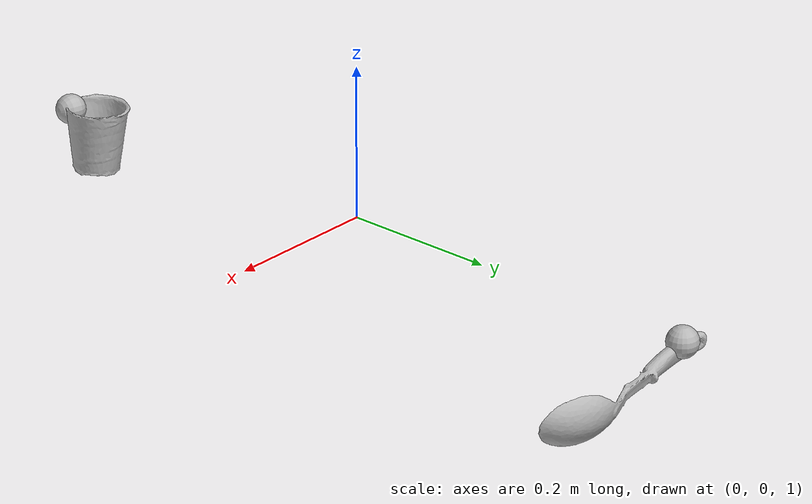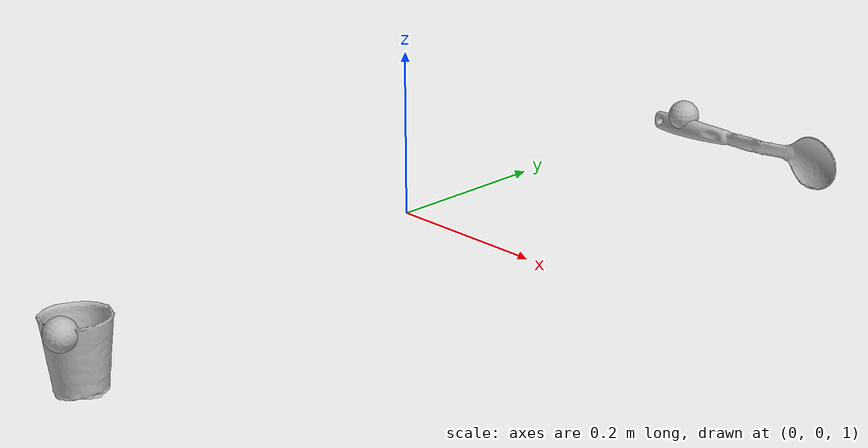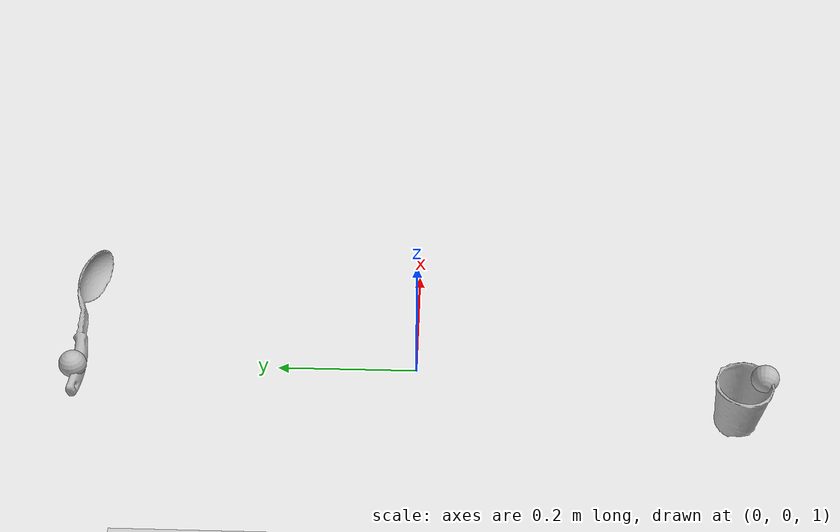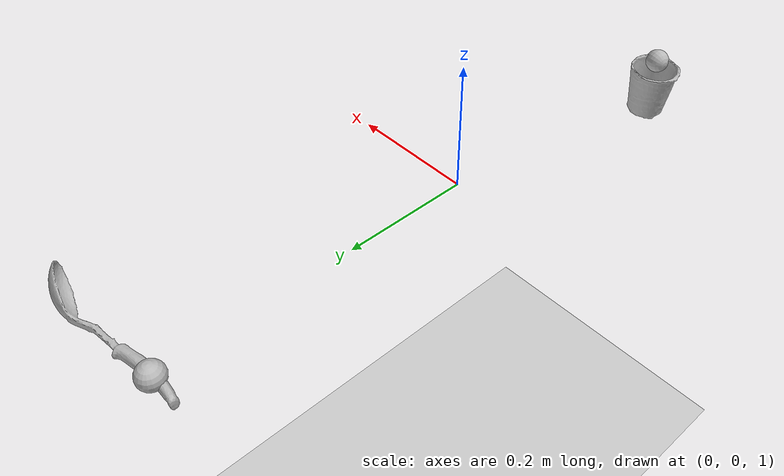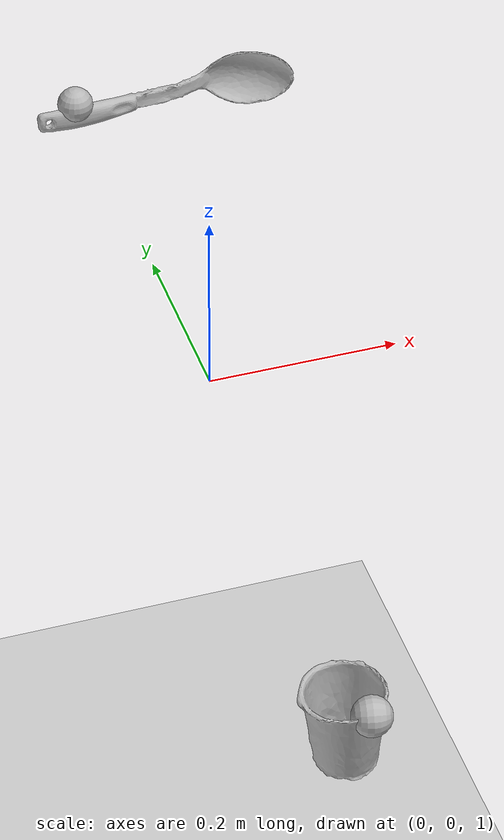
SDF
<sdf version="1.6">
 <world name="b_coffee_cup_b_serving_spoon_v">
  <include><uri>model://sun</uri></include>
  <include><uri>model://ground_plane</uri></include>
  <include>
   <uri>model://b_serving_spoon</uri>
   <pose>0.112572 0.508131 0.984633 1.382835 0.015399 0.080779</pose>
  </include>
  <plugin name="grains_factory" filename="libGrainsFactoryPlugin.so">
   <pose>-0.016492 -0.468631 0.965206 0 0 0</pose>
   <mass>0.001</mass>
   <radius>0.015</radius>
   <quantity>100</quantity>
   <friction>0.4</friction>
   <friction2>0.4</friction2>
   <velocity_decay>0.3</velocity_decay>
  </plugin>
  <include>
   <uri>model://b_coffee_cup</uri>
   <pose>-0.016492 -0.468631 0.965206 2.603069 -1.513021 -2.66073</pose>
  </include>
  <include>
   <uri>model://gripper</uri>
   <name>left_ee</name>
   <pose>0 0.5 1 0 0 0</pose>
   <plugin name="l_force_controller" filename="libvelocity_controller_plugin.so">
    <linkName>link</linkName>
    <topicName>set_l_ee_twist</topicName>
    <gains>
     <linear><P>100.0</P><I>0.0</I><D>25.0</D></linear>
     <angular><P>100.0</P><I>0.0</I><D>25.0</D></angular>
    </gains>
   </plugin>
   <plugin name="l_grip" filename="libGripPlugin.so">
    <parentLinkName>link</parentLinkName>
    <childLinkName>b_serving_spoon::link</childLinkName>
    <relativePose>0.112571612 0.00813051871955 -0.0153673645109 1.3828344221275815 0.015398730956486372 0.08077832485708741</relativePose>
   </plugin>
   <plugin name="l_tf_broadcaster" filename="libtf_broadcaster_plugin.so">
    <linkName>link</linkName>
    <frameName>l_gripper_tool_frame</frameName>
   </plugin>
  </include>
  <include>
   <uri>model://gripper</uri>
   <name>right_ee</name>
   <pose>0 -0.5 1 1.547368 1.402341 1.343703</pose>
   <plugin name="r_force_controller" filename="libvelocity_controller_plugin.so">
    <linkName>link</linkName>
    <topicName>set_r_ee_twist</topicName>
    <gains>
     <linear><P>100.0</P><I>0.0</I><D>25.0</D></linear>
     <angular><P>100.0</P><I>0.0</I><D>25.0</D></angular>
    </gains>
   </plugin>
   <plugin name="r_grip" filename="libGripPlugin.so">
    <parentLinkName>link</parentLinkName>
    <childLinkName>b_coffee_cup::link</childLinkName>
    <relativePose>0.0284501 0.0346428 -0.0213798 2.93848 0.00496188 2.88401</relativePose>
   </plugin>
   <plugin name="r_tf_broadcaster" filename="libtf_broadcaster_plugin.so">
    <linkName>link</linkName>
    <frameName>r_gripper_tool_frame</frameName>
   </plugin>
  </include>
  <plugin name="feature_visualization_plugin" filename="libgiskard_visualization_plugin.so"/>
 </world>
</sdf>

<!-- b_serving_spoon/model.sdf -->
<sdf version='1.6'>
	<model name='b_serving_spoon'>
		<static>false</static>
		<pose>0 0 0 0 0 0</pose>

		<link name='link'>
			<inertial>
			<mass>0.15</mass>
			<pose>0.0019638 -6.1791e-05 0.00018857 0 0 0</pose>
				<inertia>
					<ixx>0.0000075</ixx>
					<iyy>0.00112875</iyy>
					<izz>0.00112875</izz>
				</inertia>
			</inertial>
			<sensor name="tool_contact_sensor" type="contact">
				<always_on>true</always_on>
				<update_rate>30.0</update_rate>
				<contact>
					<collision>collision</collision>
				</contact>
				<plugin name="tool_bumper" filename="libgazebo_ros_bumper.so">
					<bumperTopicName>tool_contact_sensor_state</bumperTopicName>
					<frameName>world</frameName>
				</plugin>
			</sensor>
			<collision name='collision'>
				<geometry>
					<mesh>
						<uri>model://b_serving_spoon/b_serving_spoon.dae</uri>
					</mesh>
				</geometry>
				<surface>
					<friction>
						<ode>
							<mu>0.2</mu>
							<mu2>0.2</mu2>
						</ode>
					</friction>
				</surface>
			</collision>
			<visual name='visual'>
				<geometry>
					<mesh>
						<uri>model://b_serving_spoon/b_serving_spoon.dae</uri>
					</mesh>
				</geometry>
			</visual>
		</link>
	</model>
</sdf>

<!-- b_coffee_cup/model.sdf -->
<sdf version='1.6'>
	<model name='b_coffee_cup'>
		<static>false</static>
		<pose>0 0 0 0 0 0</pose>

		<link name='link'>
			<inertial>
			<mass>0.1</mass>
			<pose>-2.03e-05 0.001225 -0.00019831 0 0 0</pose>
				<inertia>
					<ixx>7.571e-07</ixx>
					<ixy>0</ixy>
					<ixz>0</ixz>
					<iyy>6.1374e-07</iyy>
					<iyz>0</iyz>
					<izz>6.0131e-07</izz>
				</inertia>
			</inertial>
			<collision name='collision'>
				<geometry>
					<mesh>
						<uri>model://b_coffee_cup/b_coffee_cup.dae</uri>
					</mesh>
				</geometry>
				<surface>
					<friction>
						<ode>
							<mu>0.2</mu>
							<mu2>0.2</mu2>
						</ode>
					</friction>
				</surface>
			</collision>
			<visual name='visual'>
				<geometry>
					<mesh>
						<uri>model://b_coffee_cup/b_coffee_cup.dae</uri>
					</mesh>
				</geometry>
			</visual>
		</link>
	</model>
</sdf>

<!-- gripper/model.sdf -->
<sdf version='1.6'>
    <model name='gripper'>
        <static>false</static>
        <allow_auto_disable>false</allow_auto_disable>

        <pose>0 0 0 0 0 0</pose>

        <link name='link'>
            <pose>0 0 0 0 0 0</pose>

            <gravity>false</gravity>

            <visual name='visual'>
                <geometry>
                    <sphere>
                        <radius>0.02</radius>
                    </sphere>
                </geometry>
            </visual>

        </link>
    </model>
</sdf>
